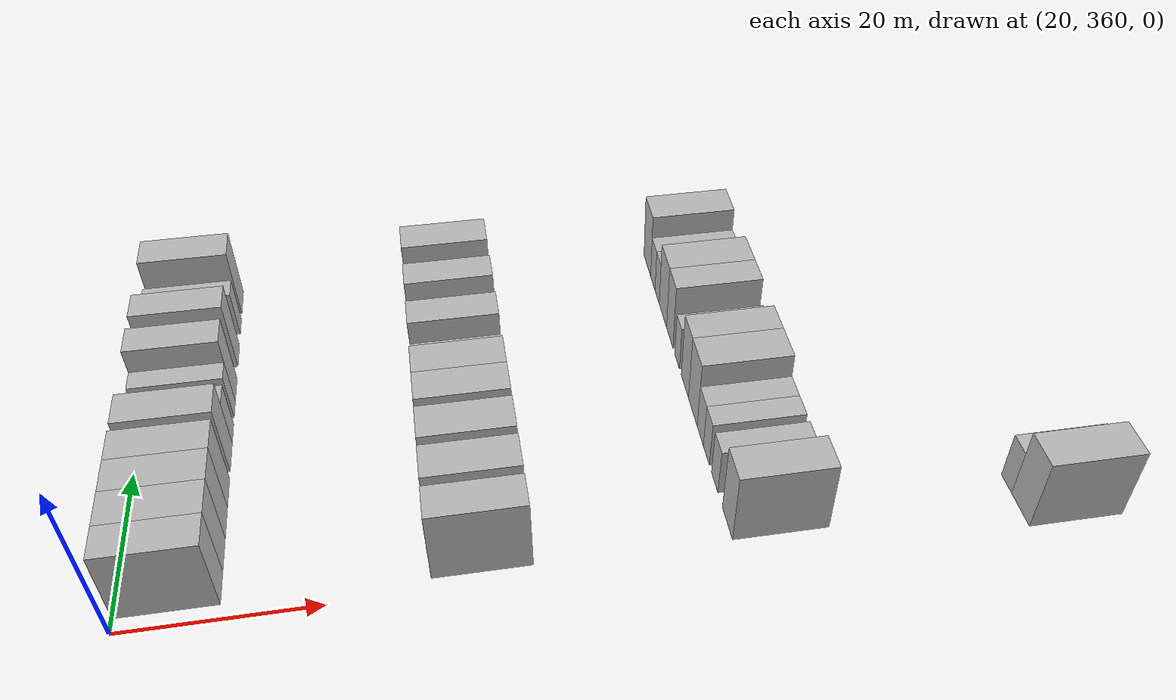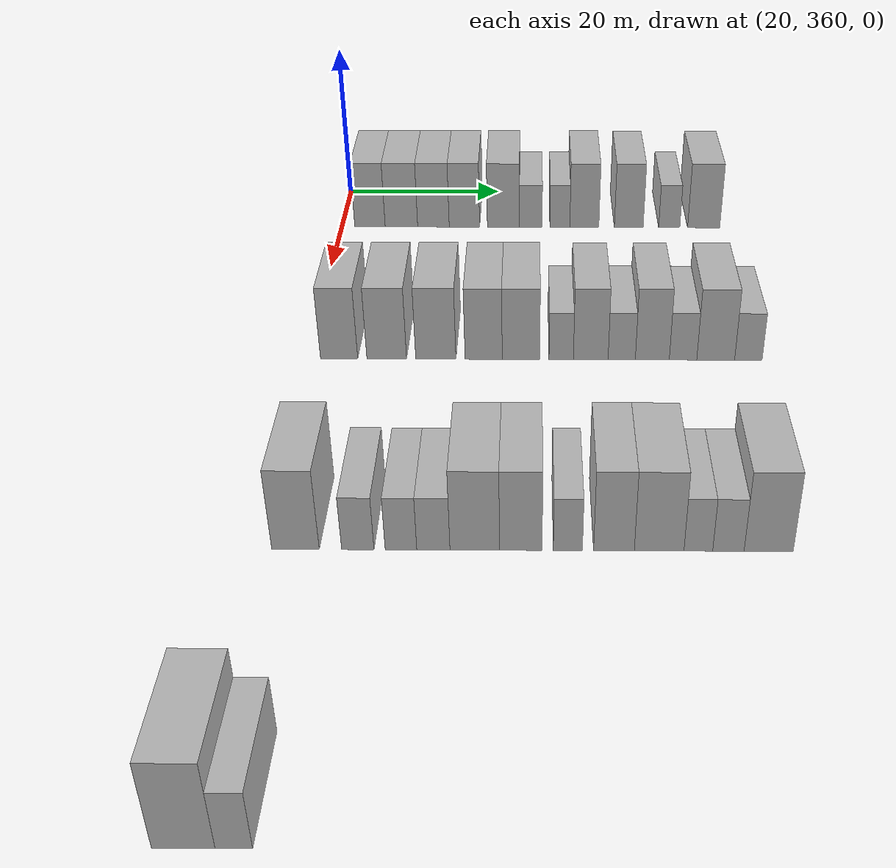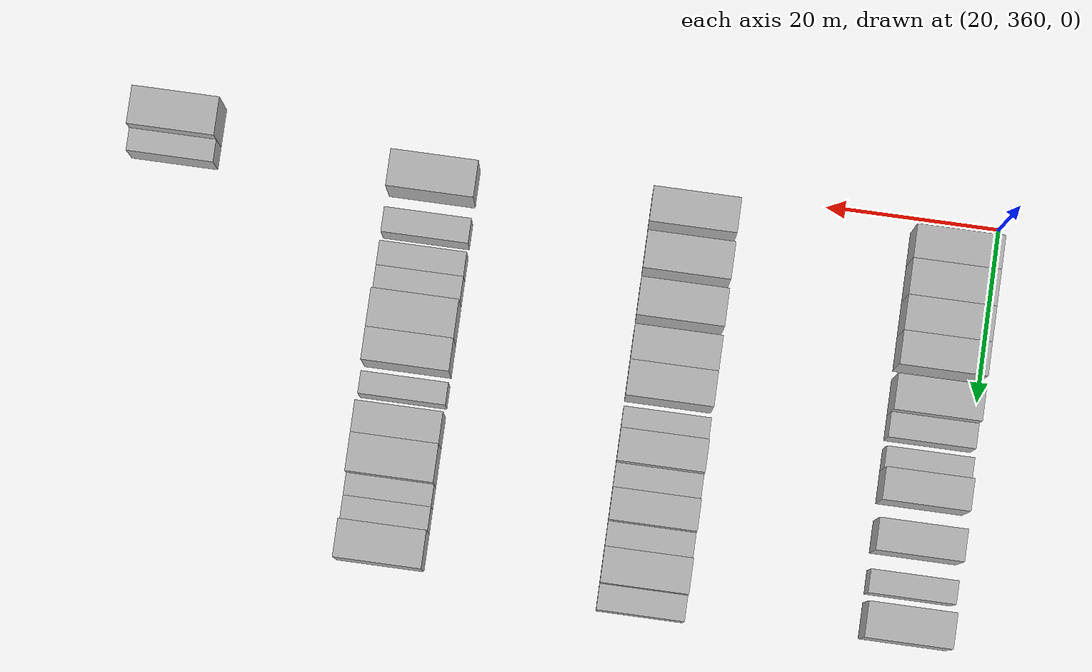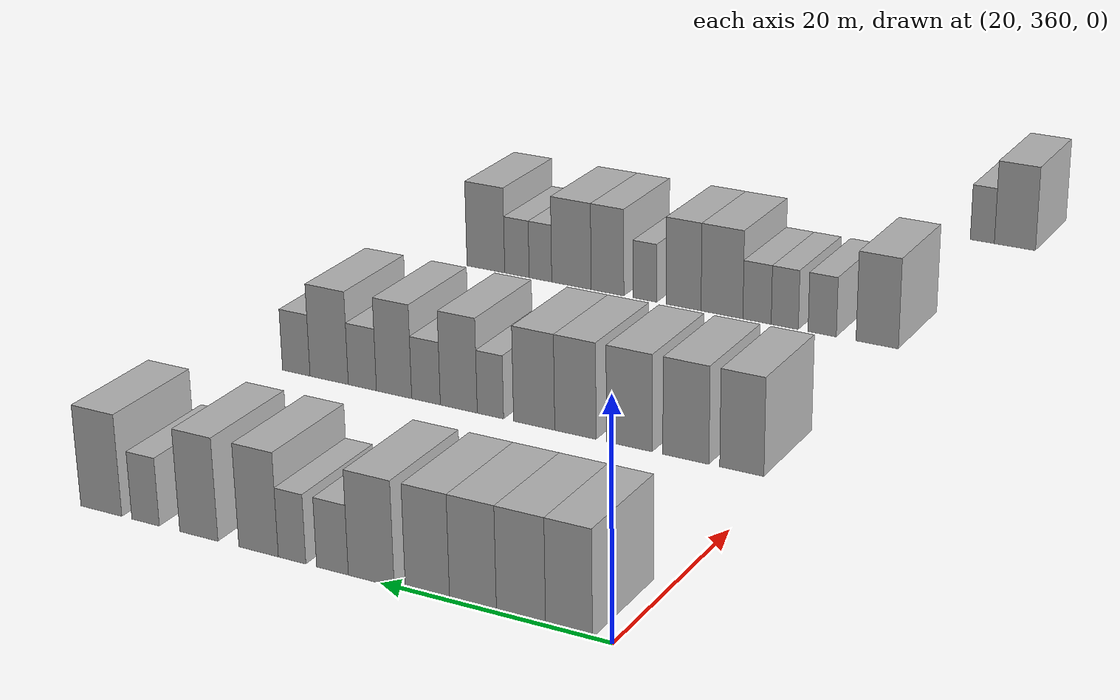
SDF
<sdf version="1.6">
 <world name="default">
  <model name="building_199">
   <static>1</static>
   <pose>25.0000 363.6625 0 0.000000 0.000000 0.000000</pose>
   <link name="link">
    <pose>0 0 4.50 0 0 0</pose>
    <collision name="collision"><geometry><box><size>10.0000 3.9141 9.0000</size></box></geometry></collision>
    <visual name="visual">
     <cast_shadows>0</cast_shadows>
     <geometry><box><size>10.0000 3.9141 9.0000</size></box></geometry>
     <material>
      <script>
       <uri>model://HANNAS_wall/materials/scripts</uri>
       <uri>model://HANNAS_wall/materials/textures</uri>
       <name>vrc/HANNAS_wall</name>
      </script>
     </material>
    </visual>
   </link>
  </model>
  <model name="building_200">
   <static>1</static>
   <pose>25.0000 367.7106 0 0.000000 0.000000 0.000000</pose>
   <link name="link">
    <pose>0 0 4.50 0 0 0</pose>
    <collision name="collision"><geometry><box><size>10.0000 4.1822 9.0000</size></box></geometry></collision>
    <visual name="visual">
     <cast_shadows>0</cast_shadows>
     <geometry><box><size>10.0000 4.1822 9.0000</size></box></geometry>
     <material>
      <script>
       <uri>model://HANNAS_wall/materials/scripts</uri>
       <uri>model://HANNAS_wall/materials/textures</uri>
       <name>vrc/HANNAS_wall</name>
      </script>
     </material>
    </visual>
   </link>
  </model>
  <model name="building_201">
   <static>1</static>
   <pose>25.0000 371.8336 0 0.000000 0.000000 0.000000</pose>
   <link name="link">
    <pose>0 0 4.50 0 0 0</pose>
    <collision name="collision"><geometry><box><size>10.0000 4.0638 9.0000</size></box></geometry></collision>
    <visual name="visual">
     <cast_shadows>0</cast_shadows>
     <geometry><box><size>10.0000 4.0638 9.0000</size></box></geometry>
     <material>
      <script>
       <uri>model://HANNAS_wall/materials/scripts</uri>
       <uri>model://HANNAS_wall/materials/textures</uri>
       <name>vrc/HANNAS_wall</name>
      </script>
     </material>
    </visual>
   </link>
  </model>
  <model name="building_202">
   <static>1</static>
   <pose>25.0000 375.8215 0 0.000000 0.000000 0.000000</pose>
   <link name="link">
    <pose>0 0 4.50 0 0 0</pose>
    <collision name="collision"><geometry><box><size>10.0000 3.9120 9.0000</size></box></geometry></collision>
    <visual name="visual">
     <cast_shadows>0</cast_shadows>
     <geometry><box><size>10.0000 3.9120 9.0000</size></box></geometry>
     <material>
      <script>
       <uri>model://HANNAS_wall/materials/scripts</uri>
       <uri>model://HANNAS_wall/materials/textures</uri>
       <name>vrc/HANNAS_wall</name>
      </script>
     </material>
    </visual>
   </link>
  </model>
  <model name="building_203">
   <static>1</static>
   <pose>25.0000 380.8445 0 0.000000 0.000000 0.000000</pose>
   <link name="link">
    <pose>0 0 4.50 0 0 0</pose>
    <collision name="collision"><geometry><box><size>10.0000 4.1339 9.0000</size></box></geometry></collision>
    <visual name="visual">
     <cast_shadows>0</cast_shadows>
     <geometry><box><size>10.0000 4.1339 9.0000</size></box></geometry>
     <material>
      <script>
       <uri>model://HANNAS_wall/materials/scripts</uri>
       <uri>model://HANNAS_wall/materials/textures</uri>
       <name>vrc/HANNAS_wall</name>
      </script>
     </material>
    </visual>
   </link>
  </model>
  <model name="building_204">
   <static>1</static>
   <pose>25.0000 384.3659 0 0.000000 0.000000 0.000000</pose>
   <link name="link">
    <pose>0 0 3.00 0 0 0</pose>
    <collision name="collision"><geometry><box><size>10.0000 2.9088 6.0000</size></box></geometry></collision>
    <visual name="visual">
     <cast_shadows>0</cast_shadows>
     <geometry><box><size>10.0000 2.9088 6.0000</size></box></geometry>
     <material>
      <script>
       <uri>model://HANNAS_wall/materials/scripts</uri>
       <uri>model://HANNAS_wall/materials/textures</uri>
       <name>vrc/HANNAS_wall</name>
      </script>
     </material>
    </visual>
   </link>
  </model>
  <model name="building_205">
   <static>1</static>
   <pose>25.0000 388.1018 0 0.000000 0.000000 0.000000</pose>
   <link name="link">
    <pose>0 0 3.00 0 0 0</pose>
    <collision name="collision"><geometry><box><size>10.0000 2.5631 6.0000</size></box></geometry></collision>
    <visual name="visual">
     <cast_shadows>0</cast_shadows>
     <geometry><box><size>10.0000 2.5631 6.0000</size></box></geometry>
     <material>
      <script>
       <uri>model://HANNAS_wall/materials/scripts</uri>
       <uri>model://HANNAS_wall/materials/textures</uri>
       <name>vrc/HANNAS_wall</name>
      </script>
     </material>
    </visual>
   </link>
  </model>
  <model name="building_206">
   <static>1</static>
   <pose>25.0000 391.2466 0 0.000000 0.000000 0.000000</pose>
   <link name="link">
    <pose>0 0 4.50 0 0 0</pose>
    <collision name="collision"><geometry><box><size>10.0000 3.7265 9.0000</size></box></geometry></collision>
    <visual name="visual">
     <cast_shadows>0</cast_shadows>
     <geometry><box><size>10.0000 3.7265 9.0000</size></box></geometry>
     <material>
      <script>
       <uri>model://HANNAS_wall/materials/scripts</uri>
       <uri>model://HANNAS_wall/materials/textures</uri>
       <name>vrc/HANNAS_wall</name>
      </script>
     </material>
    </visual>
   </link>
  </model>
  <model name="building_207">
   <static>1</static>
   <pose>25.0000 396.9594 0 0.000000 0.000000 0.000000</pose>
   <link name="link">
    <pose>0 0 4.50 0 0 0</pose>
    <collision name="collision"><geometry><box><size>10.0000 3.6990 9.0000</size></box></geometry></collision>
    <visual name="visual">
     <cast_shadows>0</cast_shadows>
     <geometry><box><size>10.0000 3.6990 9.0000</size></box></geometry>
     <material>
      <script>
       <uri>model://HANNAS_wall/materials/scripts</uri>
       <uri>model://HANNAS_wall/materials/textures</uri>
       <name>vrc/HANNAS_wall</name>
      </script>
     </material>
    </visual>
   </link>
  </model>
  <model name="building_208">
   <static>1</static>
   <pose>25.0000 402.1671 0 0.000000 0.000000 0.000000</pose>
   <link name="link">
    <pose>0 0 3.00 0 0 0</pose>
    <collision name="collision"><geometry><box><size>10.0000 2.7164 6.0000</size></box></geometry></collision>
    <visual name="visual">
     <cast_shadows>0</cast_shadows>
     <geometry><box><size>10.0000 2.7164 6.0000</size></box></geometry>
     <material>
      <script>
       <uri>model://HANNAS_wall/materials/scripts</uri>
       <uri>model://HANNAS_wall/materials/textures</uri>
       <name>vrc/HANNAS_wall</name>
      </script>
     </material>
    </visual>
   </link>
  </model>
  <model name="building_209">
   <static>1</static>
   <pose>25.0000 406.5866 0 0.000000 0.000000 0.000000</pose>
   <link name="link">
    <pose>0 0 4.50 0 0 0</pose>
    <collision name="collision"><geometry><box><size>10.0000 4.1225 9.0000</size></box></geometry></collision>
    <visual name="visual">
     <cast_shadows>0</cast_shadows>
     <geometry><box><size>10.0000 4.1225 9.0000</size></box></geometry>
     <material>
      <script>
       <uri>model://HANNAS_wall/materials/scripts</uri>
       <uri>model://HANNAS_wall/materials/textures</uri>
       <name>vrc/HANNAS_wall</name>
      </script>
     </material>
    </visual>
   </link>
  </model>
  <model name="building_414">
   <static>1</static>
   <pose>55.0000 363.5312 0 0.000000 0.000000 0.000000</pose>
   <link name="link">
    <pose>0 0 4.50 0 0 0</pose>
    <collision name="collision"><geometry><box><size>10.0000 4.0535 9.0000</size></box></geometry></collision>
    <visual name="visual">
     <cast_shadows>0</cast_shadows>
     <geometry><box><size>10.0000 4.0535 9.0000</size></box></geometry>
     <material>
      <script>
       <uri>model://HANNAS_wall/materials/scripts</uri>
       <uri>model://HANNAS_wall/materials/textures</uri>
       <name>vrc/HANNAS_wall</name>
      </script>
     </material>
    </visual>
   </link>
  </model>
  <model name="building_415">
   <static>1</static>
   <pose>55.0000 368.7202 0 0.000000 0.000000 0.000000</pose>
   <link name="link">
    <pose>0 0 4.50 0 0 0</pose>
    <collision name="collision"><geometry><box><size>10.0000 4.3246 9.0000</size></box></geometry></collision>
    <visual name="visual">
     <cast_shadows>0</cast_shadows>
     <geometry><box><size>10.0000 4.3246 9.0000</size></box></geometry>
     <material>
      <script>
       <uri>model://HANNAS_wall/materials/scripts</uri>
       <uri>model://HANNAS_wall/materials/textures</uri>
       <name>vrc/HANNAS_wall</name>
      </script>
     </material>
    </visual>
   </link>
  </model>
  <model name="building_416">
   <static>1</static>
   <pose>55.0000 374.0721 0 0.000000 0.000000 0.000000</pose>
   <link name="link">
    <pose>0 0 4.50 0 0 0</pose>
    <collision name="collision"><geometry><box><size>10.0000 4.3792 9.0000</size></box></geometry></collision>
    <visual name="visual">
     <cast_shadows>0</cast_shadows>
     <geometry><box><size>10.0000 4.3792 9.0000</size></box></geometry>
     <material>
      <script>
       <uri>model://HANNAS_wall/materials/scripts</uri>
       <uri>model://HANNAS_wall/materials/textures</uri>
       <name>vrc/HANNAS_wall</name>
      </script>
     </material>
    </visual>
   </link>
  </model>
  <model name="building_417">
   <static>1</static>
   <pose>55.0000 379.2846 0 0.000000 0.000000 0.000000</pose>
   <link name="link">
    <pose>0 0 4.50 0 0 0</pose>
    <collision name="collision"><geometry><box><size>10.0000 4.0457 9.0000</size></box></geometry></collision>
    <visual name="visual">
     <cast_shadows>0</cast_shadows>
     <geometry><box><size>10.0000 4.0457 9.0000</size></box></geometry>
     <material>
      <script>
       <uri>model://HANNAS_wall/materials/scripts</uri>
       <uri>model://HANNAS_wall/materials/textures</uri>
       <name>vrc/HANNAS_wall</name>
      </script>
     </material>
    </visual>
   </link>
  </model>
  <model name="building_418">
   <static>1</static>
   <pose>55.0000 383.3508 0 0.000000 0.000000 0.000000</pose>
   <link name="link">
    <pose>0 0 4.50 0 0 0</pose>
    <collision name="collision"><geometry><box><size>10.0000 4.0867 9.0000</size></box></geometry></collision>
    <visual name="visual">
     <cast_shadows>0</cast_shadows>
     <geometry><box><size>10.0000 4.0867 9.0000</size></box></geometry>
     <material>
      <script>
       <uri>model://HANNAS_wall/materials/scripts</uri>
       <uri>model://HANNAS_wall/materials/textures</uri>
       <name>vrc/HANNAS_wall</name>
      </script>
     </material>
    </visual>
   </link>
  </model>
  <model name="building_419">
   <static>1</static>
   <pose>55.0000 387.7235 0 0.000000 0.000000 0.000000</pose>
   <link name="link">
    <pose>0 0 3.00 0 0 0</pose>
    <collision name="collision"><geometry><box><size>10.0000 2.6588 6.0000</size></box></geometry></collision>
    <visual name="visual">
     <cast_shadows>0</cast_shadows>
     <geometry><box><size>10.0000 2.6588 6.0000</size></box></geometry>
     <material>
      <script>
       <uri>model://HANNAS_wall/materials/scripts</uri>
       <uri>model://HANNAS_wall/materials/textures</uri>
       <name>vrc/HANNAS_wall</name>
      </script>
     </material>
    </visual>
   </link>
  </model>
  <model name="building_420">
   <static>1</static>
   <pose>55.0000 390.9408 0 0.000000 0.000000 0.000000</pose>
   <link name="link">
    <pose>0 0 4.50 0 0 0</pose>
    <collision name="collision"><geometry><box><size>10.0000 3.7758 9.0000</size></box></geometry></collision>
    <visual name="visual">
     <cast_shadows>0</cast_shadows>
     <geometry><box><size>10.0000 3.7758 9.0000</size></box></geometry>
     <material>
      <script>
       <uri>model://HANNAS_wall/materials/scripts</uri>
       <uri>model://HANNAS_wall/materials/textures</uri>
       <name>vrc/HANNAS_wall</name>
      </script>
     </material>
    </visual>
   </link>
  </model>
  <model name="building_421">
   <static>1</static>
   <pose>55.0000 394.3109 0 0.000000 0.000000 0.000000</pose>
   <link name="link">
    <pose>0 0 3.00 0 0 0</pose>
    <collision name="collision"><geometry><box><size>10.0000 2.9644 6.0000</size></box></geometry></collision>
    <visual name="visual">
     <cast_shadows>0</cast_shadows>
     <geometry><box><size>10.0000 2.9644 6.0000</size></box></geometry>
     <material>
      <script>
       <uri>model://HANNAS_wall/materials/scripts</uri>
       <uri>model://HANNAS_wall/materials/textures</uri>
       <name>vrc/HANNAS_wall</name>
      </script>
     </material>
    </visual>
   </link>
  </model>
  <model name="building_422">
   <static>1</static>
   <pose>55.0000 397.6404 0 0.000000 0.000000 0.000000</pose>
   <link name="link">
    <pose>0 0 4.50 0 0 0</pose>
    <collision name="collision"><geometry><box><size>10.0000 3.6947 9.0000</size></box></geometry></collision>
    <visual name="visual">
     <cast_shadows>0</cast_shadows>
     <geometry><box><size>10.0000 3.6947 9.0000</size></box></geometry>
     <material>
      <script>
       <uri>model://HANNAS_wall/materials/scripts</uri>
       <uri>model://HANNAS_wall/materials/textures</uri>
       <name>vrc/HANNAS_wall</name>
      </script>
     </material>
    </visual>
   </link>
  </model>
  <model name="building_423">
   <static>1</static>
   <pose>55.0000 400.9823 0 0.000000 0.000000 0.000000</pose>
   <link name="link">
    <pose>0 0 3.00 0 0 0</pose>
    <collision name="collision"><geometry><box><size>10.0000 2.9892 6.0000</size></box></geometry></collision>
    <visual name="visual">
     <cast_shadows>0</cast_shadows>
     <geometry><box><size>10.0000 2.9892 6.0000</size></box></geometry>
     <material>
      <script>
       <uri>model://HANNAS_wall/materials/scripts</uri>
       <uri>model://HANNAS_wall/materials/textures</uri>
       <name>vrc/HANNAS_wall</name>
      </script>
     </material>
    </visual>
   </link>
  </model>
  <model name="building_424">
   <static>1</static>
   <pose>55.0000 404.5343 0 0.000000 0.000000 0.000000</pose>
   <link name="link">
    <pose>0 0 4.50 0 0 0</pose>
    <collision name="collision"><geometry><box><size>10.0000 4.1147 9.0000</size></box></geometry></collision>
    <visual name="visual">
     <cast_shadows>0</cast_shadows>
     <geometry><box><size>10.0000 4.1147 9.0000</size></box></geometry>
     <material>
      <script>
       <uri>model://HANNAS_wall/materials/scripts</uri>
       <uri>model://HANNAS_wall/materials/textures</uri>
       <name>vrc/HANNAS_wall</name>
      </script>
     </material>
    </visual>
   </link>
  </model>
  <model name="building_425">
   <static>1</static>
   <pose>55.0000 408.0861 0 0.000000 0.000000 0.000000</pose>
   <link name="link">
    <pose>0 0 3.00 0 0 0</pose>
    <collision name="collision"><geometry><box><size>10.0000 2.9890 6.0000</size></box></geometry></collision>
    <visual name="visual">
     <cast_shadows>0</cast_shadows>
     <geometry><box><size>10.0000 2.9890 6.0000</size></box></geometry>
     <material>
      <script>
       <uri>model://HANNAS_wall/materials/scripts</uri>
       <uri>model://HANNAS_wall/materials/textures</uri>
       <name>vrc/HANNAS_wall</name>
      </script>
     </material>
    </visual>
   </link>
  </model>
  <model name="building_645">
   <static>1</static>
   <pose>85.0000 363.4788 0 0.000000 0.000000 0.000000</pose>
   <link name="link">
    <pose>0 0 4.50 0 0 0</pose>
    <collision name="collision"><geometry><box><size>10.0000 4.2434 9.0000</size></box></geometry></collision>
    <visual name="visual">
     <cast_shadows>0</cast_shadows>
     <geometry><box><size>10.0000 4.2434 9.0000</size></box></geometry>
     <material>
      <script>
       <uri>model://HANNAS_wall/materials/scripts</uri>
       <uri>model://HANNAS_wall/materials/textures</uri>
       <name>vrc/HANNAS_wall</name>
      </script>
     </material>
    </visual>
   </link>
  </model>
  <model name="building_646">
   <static>1</static>
   <pose>85.0000 369.0429 0 0.000000 0.000000 0.000000</pose>
   <link name="link">
    <pose>0 0 3.00 0 0 0</pose>
    <collision name="collision"><geometry><box><size>10.0000 2.8849 6.0000</size></box></geometry></collision>
    <visual name="visual">
     <cast_shadows>0</cast_shadows>
     <geometry><box><size>10.0000 2.8849 6.0000</size></box></geometry>
     <material>
      <script>
       <uri>model://HANNAS_wall/materials/scripts</uri>
       <uri>model://HANNAS_wall/materials/textures</uri>
       <name>vrc/HANNAS_wall</name>
      </script>
     </material>
    </visual>
   </link>
  </model>
  <model name="building_647">
   <static>1</static>
   <pose>85.0000 372.8928 0 0.000000 0.000000 0.000000</pose>
   <link name="link">
    <pose>0 0 3.00 0 0 0</pose>
    <collision name="collision"><geometry><box><size>10.0000 2.8149 6.0000</size></box></geometry></collision>
    <visual name="visual">
     <cast_shadows>0</cast_shadows>
     <geometry><box><size>10.0000 2.8149 6.0000</size></box></geometry>
     <material>
      <script>
       <uri>model://HANNAS_wall/materials/scripts</uri>
       <uri>model://HANNAS_wall/materials/textures</uri>
       <name>vrc/HANNAS_wall</name>
      </script>
     </material>
    </visual>
   </link>
  </model>
  <model name="building_648">
   <static>1</static>
   <pose>85.0000 375.7809 0 0.000000 0.000000 0.000000</pose>
   <link name="link">
    <pose>0 0 3.00 0 0 0</pose>
    <collision name="collision"><geometry><box><size>10.0000 2.9613 6.0000</size></box></geometry></collision>
    <visual name="visual">
     <cast_shadows>0</cast_shadows>
     <geometry><box><size>10.0000 2.9613 6.0000</size></box></geometry>
     <material>
      <script>
       <uri>model://HANNAS_wall/materials/scripts</uri>
       <uri>model://HANNAS_wall/materials/textures</uri>
       <name>vrc/HANNAS_wall</name>
      </script>
     </material>
    </visual>
   </link>
  </model>
  <model name="building_649">
   <static>1</static>
   <pose>85.0000 379.4812 0 0.000000 0.000000 0.000000</pose>
   <link name="link">
    <pose>0 0 4.50 0 0 0</pose>
    <collision name="collision"><geometry><box><size>10.0000 4.4393 9.0000</size></box></geometry></collision>
    <visual name="visual">
     <cast_shadows>0</cast_shadows>
     <geometry><box><size>10.0000 4.4393 9.0000</size></box></geometry>
     <material>
      <script>
       <uri>model://HANNAS_wall/materials/scripts</uri>
       <uri>model://HANNAS_wall/materials/textures</uri>
       <name>vrc/HANNAS_wall</name>
      </script>
     </material>
    </visual>
   </link>
  </model>
  <model name="building_650">
   <static>1</static>
   <pose>85.0000 383.5866 0 0.000000 0.000000 0.000000</pose>
   <link name="link">
    <pose>0 0 4.50 0 0 0</pose>
    <collision name="collision"><geometry><box><size>10.0000 3.7716 9.0000</size></box></geometry></collision>
    <visual name="visual">
     <cast_shadows>0</cast_shadows>
     <geometry><box><size>10.0000 3.7716 9.0000</size></box></geometry>
     <material>
      <script>
       <uri>model://HANNAS_wall/materials/scripts</uri>
       <uri>model://HANNAS_wall/materials/textures</uri>
       <name>vrc/HANNAS_wall</name>
      </script>
     </material>
    </visual>
   </link>
  </model>
  <model name="building_651">
   <static>1</static>
   <pose>85.0000 387.7676 0 0.000000 0.000000 0.000000</pose>
   <link name="link">
    <pose>0 0 3.00 0 0 0</pose>
    <collision name="collision"><geometry><box><size>10.0000 2.5903 6.0000</size></box></geometry></collision>
    <visual name="visual">
     <cast_shadows>0</cast_shadows>
     <geometry><box><size>10.0000 2.5903 6.0000</size></box></geometry>
     <material>
      <script>
       <uri>model://HANNAS_wall/materials/scripts</uri>
       <uri>model://HANNAS_wall/materials/textures</uri>
       <name>vrc/HANNAS_wall</name>
      </script>
     </material>
    </visual>
   </link>
  </model>
  <model name="building_652">
   <static>1</static>
   <pose>85.0000 391.8755 0 0.000000 0.000000 0.000000</pose>
   <link name="link">
    <pose>0 0 4.50 0 0 0</pose>
    <collision name="collision"><geometry><box><size>10.0000 3.6257 9.0000</size></box></geometry></collision>
    <visual name="visual">
     <cast_shadows>0</cast_shadows>
     <geometry><box><size>10.0000 3.6257 9.0000</size></box></geometry>
     <material>
      <script>
       <uri>model://HANNAS_wall/materials/scripts</uri>
       <uri>model://HANNAS_wall/materials/textures</uri>
       <name>vrc/HANNAS_wall</name>
      </script>
     </material>
    </visual>
   </link>
  </model>
  <model name="building_653">
   <static>1</static>
   <pose>85.0000 395.8981 0 0.000000 0.000000 0.000000</pose>
   <link name="link">
    <pose>0 0 4.50 0 0 0</pose>
    <collision name="collision"><geometry><box><size>10.0000 4.4195 9.0000</size></box></geometry></collision>
    <visual name="visual">
     <cast_shadows>0</cast_shadows>
     <geometry><box><size>10.0000 4.4195 9.0000</size></box></geometry>
     <material>
      <script>
       <uri>model://HANNAS_wall/materials/scripts</uri>
       <uri>model://HANNAS_wall/materials/textures</uri>
       <name>vrc/HANNAS_wall</name>
      </script>
     </material>
    </visual>
   </link>
  </model>
  <model name="building_654">
   <static>1</static>
   <pose>85.0000 399.3881 0 0.000000 0.000000 0.000000</pose>
   <link name="link">
    <pose>0 0 3.00 0 0 0</pose>
    <collision name="collision"><geometry><box><size>10.0000 2.5605 6.0000</size></box></geometry></collision>
    <visual name="visual">
     <cast_shadows>0</cast_shadows>
     <geometry><box><size>10.0000 2.5605 6.0000</size></box></geometry>
     <material>
      <script>
       <uri>model://HANNAS_wall/materials/scripts</uri>
       <uri>model://HANNAS_wall/materials/textures</uri>
       <name>vrc/HANNAS_wall</name>
      </script>
     </material>
    </visual>
   </link>
  </model>
  <model name="building_655">
   <static>1</static>
   <pose>85.0000 402.0658 0 0.000000 0.000000 0.000000</pose>
   <link name="link">
    <pose>0 0 3.00 0 0 0</pose>
    <collision name="collision"><geometry><box><size>10.0000 2.7950 6.0000</size></box></geometry></collision>
    <visual name="visual">
     <cast_shadows>0</cast_shadows>
     <geometry><box><size>10.0000 2.7950 6.0000</size></box></geometry>
     <material>
      <script>
       <uri>model://HANNAS_wall/materials/scripts</uri>
       <uri>model://HANNAS_wall/materials/textures</uri>
       <name>vrc/HANNAS_wall</name>
      </script>
     </material>
    </visual>
   </link>
  </model>
  <model name="building_656">
   <static>1</static>
   <pose>85.0000 405.6488 0 0.000000 0.000000 0.000000</pose>
   <link name="link">
    <pose>0 0 4.50 0 0 0</pose>
    <collision name="collision"><geometry><box><size>10.0000 4.3710 9.0000</size></box></geometry></collision>
    <visual name="visual">
     <cast_shadows>0</cast_shadows>
     <geometry><box><size>10.0000 4.3710 9.0000</size></box></geometry>
     <material>
      <script>
       <uri>model://HANNAS_wall/materials/scripts</uri>
       <uri>model://HANNAS_wall/materials/textures</uri>
       <name>vrc/HANNAS_wall</name>
      </script>
     </material>
    </visual>
   </link>
  </model>
  <model name="building_873">
   <static>1</static>
   <pose>115.0000 360.3765 0 0.000000 0.000000 0.000000</pose>
   <link name="link">
    <pose>0 0 4.50 0 0 0</pose>
    <collision name="collision"><geometry><box><size>10.0000 4.4267 9.0000</size></box></geometry></collision>
    <visual name="visual">
     <cast_shadows>0</cast_shadows>
     <geometry><box><size>10.0000 4.4267 9.0000</size></box></geometry>
     <material>
      <script>
       <uri>model://HANNAS_wall/materials/scripts</uri>
       <uri>model://HANNAS_wall/materials/textures</uri>
       <name>vrc/HANNAS_wall</name>
      </script>
     </material>
    </visual>
   </link>
  </model>
  <model name="building_874">
   <static>1</static>
   <pose>115.0000 363.8986 0 0.000000 0.000000 0.000000</pose>
   <link name="link">
    <pose>0 0 3.00 0 0 0</pose>
    <collision name="collision"><geometry><box><size>10.0000 2.6175 6.0000</size></box></geometry></collision>
    <visual name="visual">
     <cast_shadows>0</cast_shadows>
     <geometry><box><size>10.0000 2.6175 6.0000</size></box></geometry>
     <material>
      <script>
       <uri>model://HANNAS_wall/materials/scripts</uri>
       <uri>model://HANNAS_wall/materials/textures</uri>
       <name>vrc/HANNAS_wall</name>
      </script>
     </material>
    </visual>
   </link>
  </model>
 </world>
</sdf>
